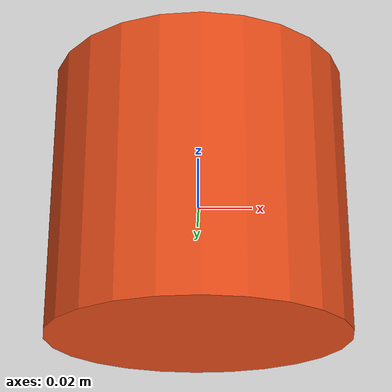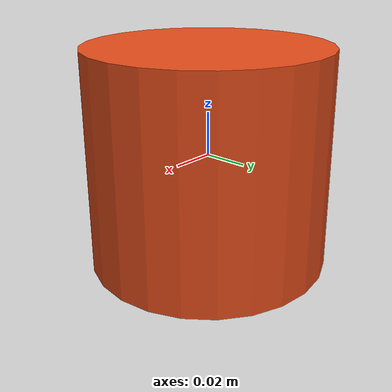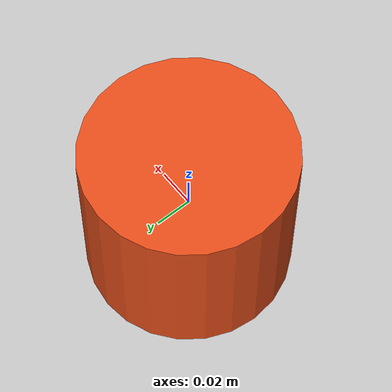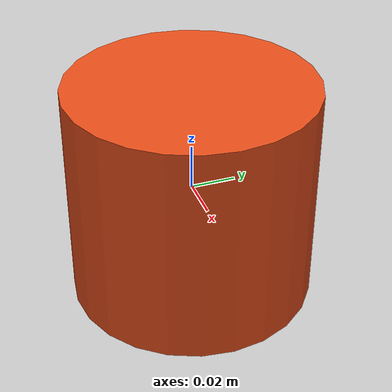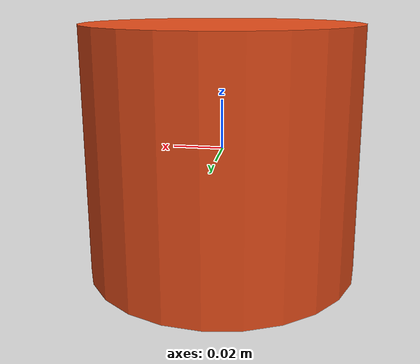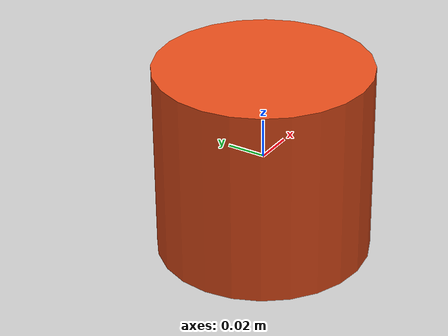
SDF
<?xml version="1.0" ?>
<!-- Cilindro solido. Diametro 110 mm (radio 0.055 m) x altura 100 mm.
     Masa 50 g. Friccion mu=mu2=1.2. Eje vertical (de pie).
     Inercia: Izz=7.5625e-05  Ixx=Iyy=7.9479e-05 -->
<sdf version="1.10">
  <model name="cilindro_110">
    <pose>0 0 0 0 0 0</pose>
    <link name="link">
      <inertial>
        <mass>0.05</mass>
        <inertia><ixx>7.9479e-05</ixx><iyy>7.9479e-05</iyy><izz>7.5625e-05</izz>
          <ixy>0</ixy><ixz>0</ixz><iyz>0</iyz></inertia>
      </inertial>
      <collision name="collision">
        <geometry><cylinder><radius>0.055</radius><length>0.1</length></cylinder></geometry>
        <surface>
          <friction><ode><mu>1.2</mu><mu2>1.2</mu2></ode></friction>
          <contact><ode><kp>1e6</kp><kd>1e2</kd></ode></contact>
        </surface>
      </collision>
      <visual name="visual">
        <geometry><cylinder><radius>0.055</radius><length>0.1</length></cylinder></geometry>
        <material><ambient>0.9 0.3 0.1 1</ambient><diffuse>0.9 0.3 0.1 1</diffuse></material>
      </visual>
    </link>
  </model>
</sdf>
